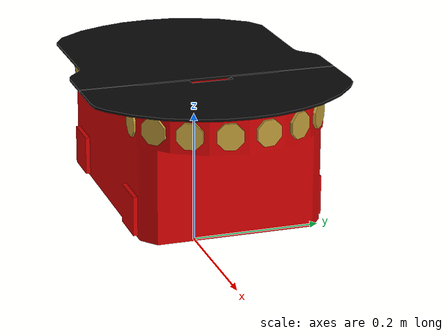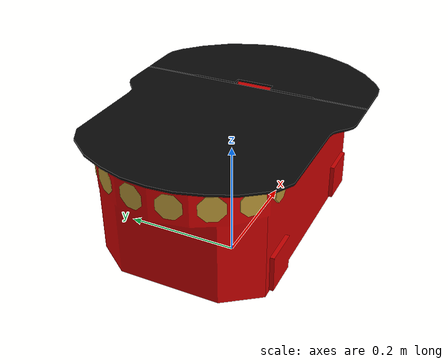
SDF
<sdf version='1.6'>
  <model name='pioneer3at'>
    <link name='base_link'>
      <pose frame=''>0 0 0 0 -0 0</pose>
      <inertial>
        <pose frame=''>-7.3e-05 -0.098619 0.177079 0 -0 0</pose>
        <mass>21.801</mass>
        <inertia>
          <ixx>3.33948</ixx>
          <ixy>0.000157791</ixy>
          <ixz>-0.000377226</ixz>
          <iyy>3.48818</iyy>
          <iyz>-0.000168935</iyz>
          <izz>3.34414</izz>
        </inertia>
      </inertial>
      <collision name='base_link_collision'>
        <pose frame=''>0 0 0.177 0 -0 0</pose>
        <geometry>
          <mesh>
            <scale>1 1 1</scale>
            <uri>model://amr_robots_description/meshes/p3at_meshes/chassis.stl</uri>
          </mesh>
        </geometry>
        <surface>
          <contact>
            <ode/>
          </contact>
          <friction>
            <ode/>
          </friction>
        </surface>
      </collision>
      <collision name='base_link_fixed_joint_lump__back_sonar_collision_1'>
        <pose frame=''>-0.187 0 0.247 0 -0 0</pose>
        <geometry>
          <box>
            <size>0.1 0.1 0.1</size>
          </box>
        </geometry>
        <surface>
          <contact>
            <ode/>
          </contact>
          <friction>
            <ode/>
          </friction>
        </surface>
      </collision>
      <collision name='base_link_fixed_joint_lump__front_sonar_collision_2'>
        <pose frame=''>0.193 0 0.25 0 -0 0</pose>
        <geometry>
          <box>
            <size>0.1 0.1 0.1</size>
          </box>
        </geometry>
        <surface>
          <contact>
            <ode/>
          </contact>
          <friction>
            <ode/>
          </friction>
        </surface>
      </collision>
      <collision name='base_link_fixed_joint_lump__top_plate_collision_3'>
        <pose frame=''>0.003 0 0.274 0 -0 0</pose>
        <geometry>
          <box>
            <size>0.1 0.1 0.1</size>
          </box>
        </geometry>
        <surface>
          <contact>
            <ode/>
          </contact>
          <friction>
            <ode/>
          </friction>
        </surface>
      </collision>
      <collision name='base_link_fixed_joint_lump__imu_link_collision_4'>
        <pose frame=''>0 0 0.19 0 -0 0</pose>
        <geometry>
          <box>
            <size>0.001 0.001 0.001</size>
          </box>
        </geometry>
      </collision>
      <visual name='base_link_fixed_joint_lump__base_visual_visual'>
        <pose frame=''>0 0 0.177 0 -0 0</pose>
        <geometry>
          <mesh>
            <scale>1 1 1</scale>
            <uri>model://amr_robots_description/meshes/p3at_meshes/chassis.stl</uri>
          </mesh>
        </geometry>
      </visual>
      <visual name='base_link_fixed_joint_lump__base_visual_visual_1'>
        <pose frame=''>-0.187 0 0.247 0 -0 0</pose>
        <geometry>
          <mesh>
            <scale>1 1 1</scale>
            <uri>model://amr_robots_description/meshes/p3at_meshes/back_sonar.stl</uri>
          </mesh>
        </geometry>
      </visual>
      <visual name='base_link_fixed_joint_lump__base_visual_visual_2'>
        <pose frame=''>0.193 0 0.25 0 -0 0</pose>
        <geometry>
          <mesh>
            <scale>1 1 1</scale>
            <uri>model://amr_robots_description/meshes/p3at_meshes/front_sonar.stl</uri>
          </mesh>
        </geometry>
      </visual>
      <visual name='base_link_fixed_joint_lump__base_visual_visual_3'>
        <pose frame=''>0.003 0 0.274 0 -0 0</pose>
        <geometry>
          <mesh>
            <scale>1 1 1</scale>
            <uri>model://amr_robots_description/meshes/p3at_meshes/top.stl</uri>
          </mesh>
        </geometry>
      </visual>
      <visual name='base_link_fixed_joint_lump__base_footprint_visual_4'>
        <pose frame=''>0 0 0.19 0 -0 0</pose>
        <geometry>
          <box>
            <size>0.001 0.001 0.001</size>
          </box>
        </geometry>
      </visual>
      <visual name='base_link_fixed_joint_lump__imu_link_visual_5'>
        <pose frame=''>0 0 0.19 0 -0 0</pose>
        <geometry>
          <box>
            <size>0.001 0.001 0.001</size>
          </box>
        </geometry>
      </visual>
      <velocity_decay/>
      <velocity_decay/>
      <velocity_decay/>
      <gravity>1</gravity>
      <velocity_decay/>
      <self_collide>0</self_collide>
    </link>
  </model>
</sdf>
